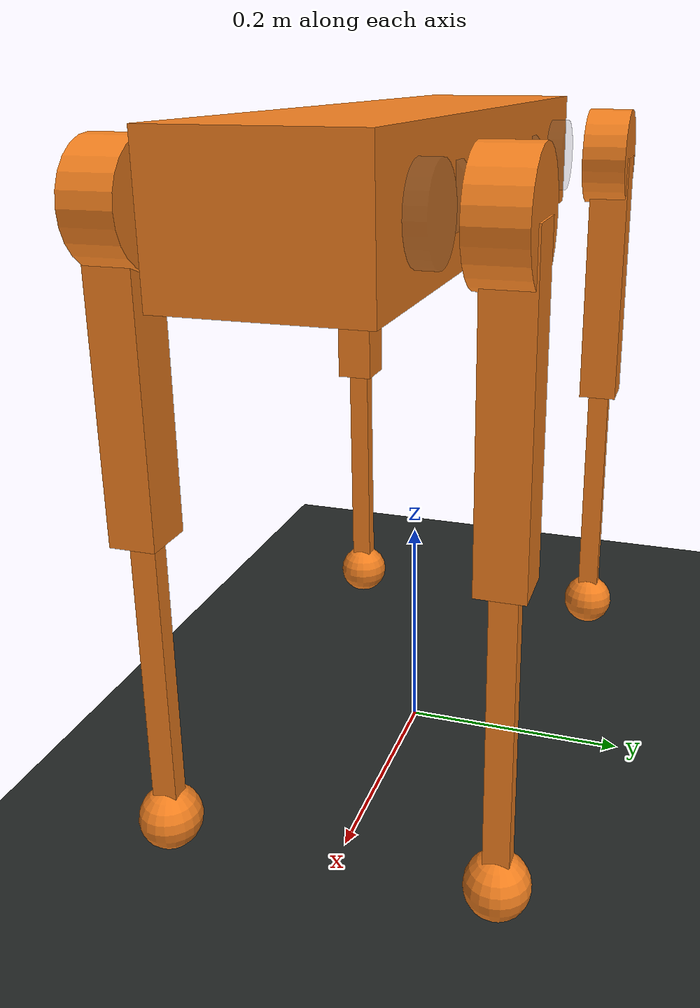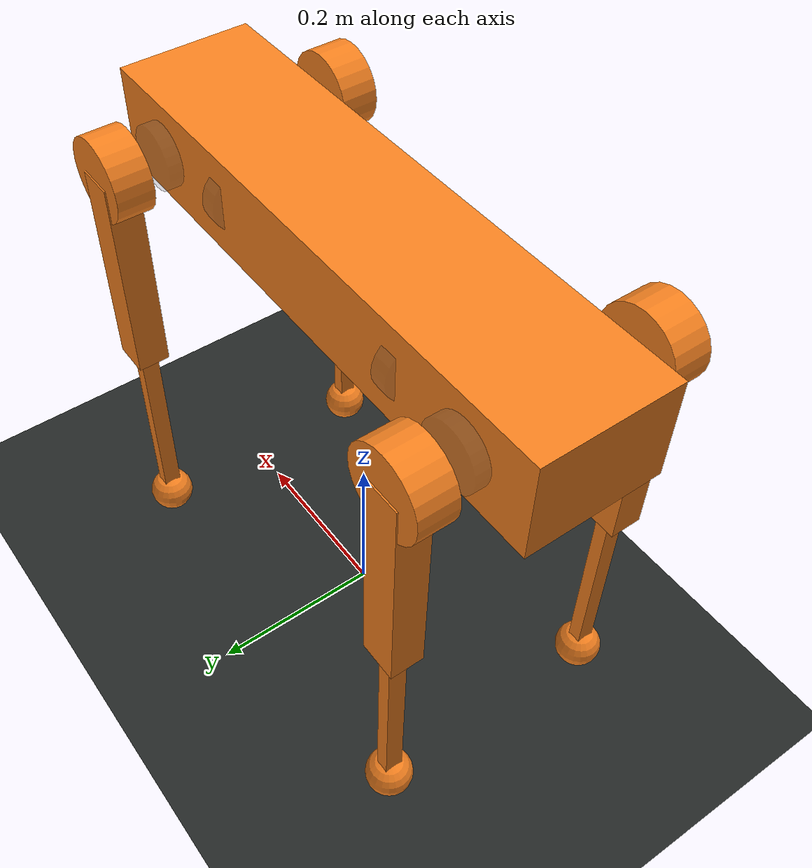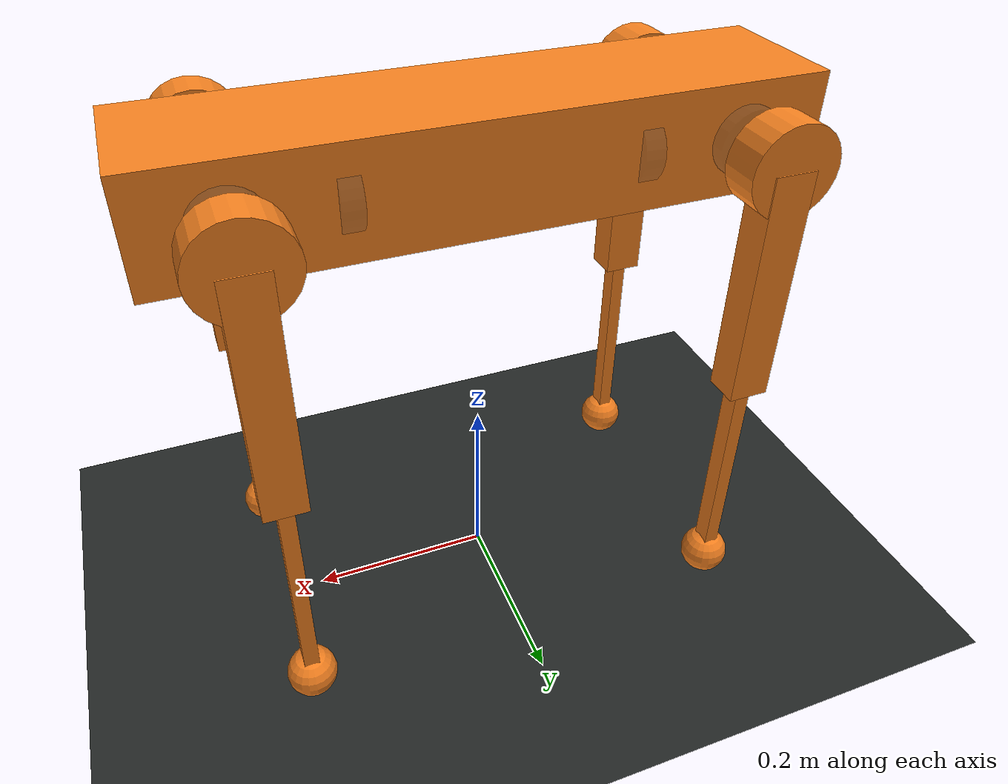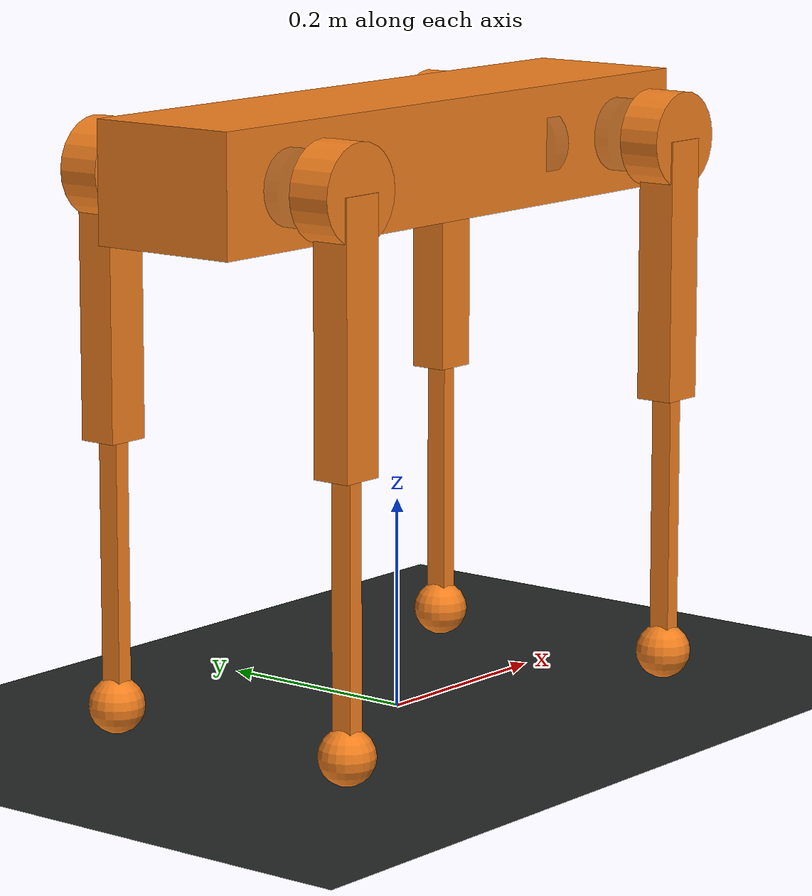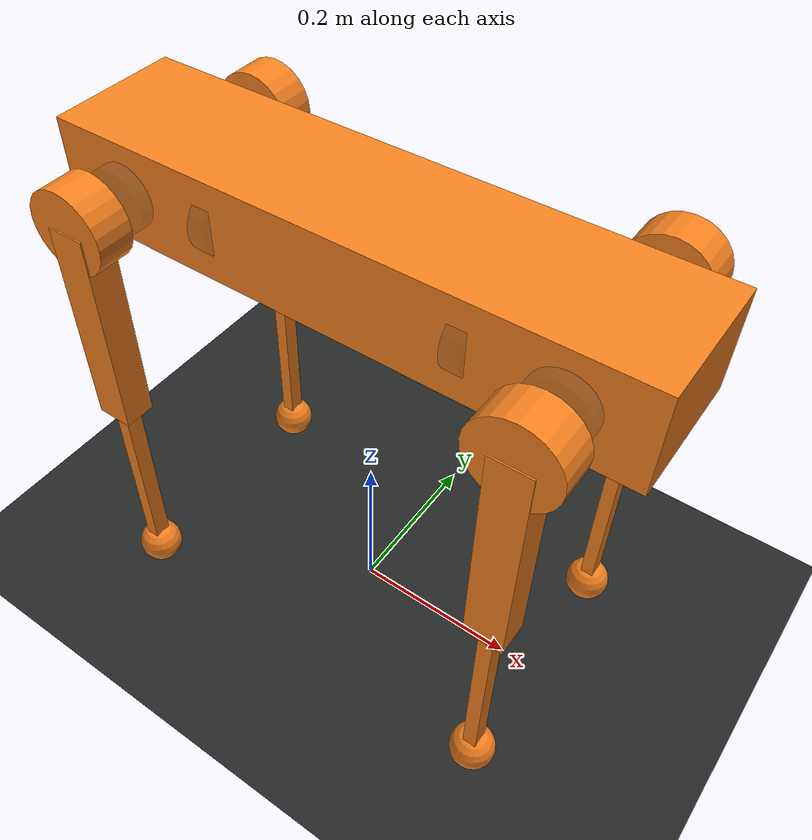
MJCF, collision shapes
<mujoco model="aliengo_scene">
  <compiler angle="radian" meshdir="." texturedir="." autolimits="true" />
  <option timestep="0.002" gravity="0 0 -9.81" integrator="implicitfast" cone="elliptic" iterations="80" tolerance="1e-10" />
  <statistic center="0 0 0.35" extent="2.6" />
  <visual>
    <headlight diffuse="0.55 0.55 0.55" ambient="0.14 0.14 0.14" specular="0.15 0.15 0.15" />
    <rgba haze="0.04 0.05 0.06 1" />
    <map znear="0.01" zfar="30" />
  </visual>
  <default>
    <geom margin="0.001" />
    <joint damping="2" armature="0.01" frictionloss="0.02" />
  </default>
  <asset>
    <texture name="skybox" type="skybox" builtin="gradient" rgb1="0.62 0.73 0.86" rgb2="0.06 0.08 0.11" width="512" height="512" />
    <texture name="ground_tex" type="2d" builtin="checker" rgb1="0.22 0.24 0.24" rgb2="0.28 0.30 0.30" width="512" height="512" />
    <material name="ground" texture="ground_tex" texrepeat="7 7" texuniform="true" rgba="0.55 0.56 0.54 1" roughness="0.92" specular="0.08" />
    <material name="aliengo_body" rgba="0.95 0.42 0.08 1" roughness="0.58" specular="0.22" />
    <material name="aliengo_leg" rgba="0.10 0.105 0.11 1" roughness="0.72" specular="0.16" />
    <material name="aliengo_collision" rgba="0.95 0.50 0.12 0.22" />
    <mesh name="aliengo_calf" file="aliengo_assets/calf.obj" smoothnormal="true" />
    <mesh name="aliengo_hip" file="aliengo_assets/hip.obj" smoothnormal="true" />
    <mesh name="aliengo_thigh" file="aliengo_assets/thigh.obj" smoothnormal="true" />
    <mesh name="aliengo_thigh_mirror" file="aliengo_assets/thigh_mirror.obj" smoothnormal="true" />
    <mesh name="aliengo_trunk" file="aliengo_assets/trunk.obj" smoothnormal="true" />
  </asset>
  <worldbody>
    <light name="key_light" directional="true" pos="-3 -4 6" dir="0.45 0.55 -1" diffuse="0.92 0.88 0.80" ambient="0.16 0.16 0.18" specular="0.22 0.22 0.22" />
    <geom name="floor" type="plane" size="5 5 0.05" material="ground" friction="0.9 0.02 0.01" />
    <camera name="front_view" pos="2.2 -3.0 1.35" xyaxes="0.81 0.59 0 -0.22 0.30 0.93" fovy="45" />
    <camera name="side_view" pos="0 -3.3 0.95" xyaxes="1 0 0 0 0.27 0.96" fovy="45" />
    <camera name="top_mount_view" pos="-1.5 -2.2 1.8" xyaxes="0.83 -0.56 0 0.36 0.54 0.76" fovy="40" />
    <body name="trunk" pos="0 0 0.528">
      <freejoint name="floating_base" />
      <inertial pos="0.008811 0.003839 0.000273" mass="11.644" fullinertia="0.051944892 0.24693924 0.270948307 0.001703617 0.000235941 0.000119783" />
      <geom name="trunk_visual" type="mesh" mesh="aliengo_trunk" material="aliengo_body" contype="0" conaffinity="0" group="2" rgba="0.95 0.42 0.08 1" />
      <geom size="0.3235 0.075 0.056" type="box" rgba="0.95 0.50 0.12 0.20" group="3" friction="0.85 0.02 0.01" condim="3" solref="0.02 1" solimp="0.9 0.95 0.001" name="trunk_collision" />
      <geom size="0.0005 0.0005 0.0005" type="box" rgba="0.35 0.35 0.35 0.10" group="4" friction="0.85 0.02 0.01" condim="3" solref="0.02 1" solimp="0.9 0.95 0.001" name="base_marker_collision_disabled" contype="0" conaffinity="0" />
      <geom size="0.035 0.01" pos="0.139985 -0.051 0" quat="0.707107 0 0.707107 0" type="cylinder" rgba="0.35 0.35 0.35 0.10" group="4" friction="0.85 0.02 0.01" condim="3" solref="0.02 1" solimp="0.9 0.95 0.001" name="trunk_rotor_collision_disabled" contype="0" conaffinity="0" />
      <geom size="0.035 0.01" pos="0.139985 0.051 0" quat="0.707107 0 0.707107 0" type="cylinder" rgba="0.35 0.35 0.35 0.10" group="4" friction="0.85 0.02 0.01" condim="3" solref="0.02 1" solimp="0.9 0.95 0.001" name="trunk_rotor_collision_disabled_2" contype="0" conaffinity="0" />
      <geom size="0.035 0.01" pos="-0.139985 -0.051 0" quat="0.707107 0 0.707107 0" type="cylinder" rgba="0.35 0.35 0.35 0.10" group="4" friction="0.85 0.02 0.01" condim="3" solref="0.02 1" solimp="0.9 0.95 0.001" name="trunk_rotor_collision_disabled_3" contype="0" conaffinity="0" />
      <geom size="0.035 0.01" pos="-0.139985 0.051 0" quat="0.707107 0 0.707107 0" type="cylinder" rgba="0.35 0.35 0.35 0.10" group="4" friction="0.85 0.02 0.01" condim="3" solref="0.02 1" solimp="0.9 0.95 0.001" name="trunk_rotor_collision_disabled_4" contype="0" conaffinity="0" />
      <body name="FR_hip" pos="0.2407 -0.051 0">
        <inertial pos="-0.0186423 -0.0141103 -1.39762e-05" quat="0.0813782 0.701816 -0.0890737 0.702067" mass="2.139" diaginertia="0.00463042 0.00455328 0.00244029" />
        <joint name="FR_hip_joint" pos="0 0 0" axis="1 0 0" range="-1.22173 1.22173" actuatorfrcrange="-35.278 35.278" damping="2" armature="0.01" frictionloss="0.02" ref="-0.1" />
        <geom name="FR_hip_visual" type="mesh" mesh="aliengo_hip" material="aliengo_leg" contype="0" conaffinity="0" group="2" quat="0 1 0 0" rgba="0.08 0.085 0.09 1" />
        <geom size="0.046 0.0209" pos="0 -0.083 0" quat="0.707107 0.707107 0 0" type="cylinder" rgba="0.95 0.50 0.12 0.20" group="3" friction="0.85 0.02 0.01" condim="3" solref="0.02 1" solimp="0.9 0.95 0.001" name="FR_hip_collision" />
        <geom size="0.035 0.01" pos="0 -0.0298 0" quat="0.707107 0.707107 0 0" type="cylinder" rgba="0.35 0.35 0.35 0.10" group="4" friction="0.85 0.02 0.01" condim="3" solref="0.02 1" solimp="0.9 0.95 0.001" name="FR_hip_rotor_collision_disabled" contype="0" conaffinity="0" />
        <body name="FR_thigh" pos="0 -0.0868 0">
          <inertial pos="-0.00464705 0.00321323 -0.0228778" quat="0.693645 0.0210128 0.0253423 0.719564" mass="0.771" diaginertia="0.00687384 0.00674067 0.000463497" />
          <joint name="FR_thigh_joint" pos="0 0 0" axis="0 1 0" actuatorfrcrange="-35.278 35.278" damping="2" armature="0.01" frictionloss="0.02" range="-2.6 2.6" ref="0.8" />
          <geom name="FR_thigh_visual" type="mesh" mesh="aliengo_thigh_mirror" material="aliengo_leg" contype="0" conaffinity="0" group="2" rgba="0.08 0.085 0.09 1" />
          <geom size="0.125 0.0187 0.0215" pos="0 0 -0.125" quat="0.707107 0 0.707107 0" type="box" rgba="0.95 0.50 0.12 0.20" group="3" friction="0.85 0.02 0.01" condim="3" solref="0.02 1" solimp="0.9 0.95 0.001" name="FR_thigh_collision" />
          <geom size="0.035 0.01" pos="0 0.0997 0" quat="0.707107 0.707107 0 0" type="cylinder" rgba="0.35 0.35 0.35 0.10" group="4" friction="0.85 0.02 0.01" condim="3" solref="0.02 1" solimp="0.9 0.95 0.001" name="FR_thigh_rotor_collision_disabled" contype="0" conaffinity="0" />
          <body name="FR_calf" pos="0 0 -0.25">
            <inertial pos="0.00215606 4.88427e-05 -0.166671" quat="0.708049 0.000982931 0.00120829 0.706161" mass="0.267" diaginertia="0.00269606 0.00268354 5.47714e-05" />
            <joint name="FR_calf_joint" pos="0 0 0" axis="0 1 0" range="-2.77507 -0.645772" actuatorfrcrange="-44.4 44.4" damping="2" armature="0.01" frictionloss="0.02" ref="-1.5" />
            <geom name="FR_calf_visual" type="mesh" mesh="aliengo_calf" material="aliengo_leg" contype="0" conaffinity="0" group="2" rgba="0.08 0.085 0.09 1" />
            <geom size="0.125 0.0104 0.008" pos="0 0 -0.125" quat="0.707107 0 0.707107 0" type="box" rgba="0.95 0.50 0.12 0.20" group="3" friction="0.85 0.02 0.01" condim="3" solref="0.02 1" solimp="0.9 0.95 0.001" name="FR_calf_collision" />
            <geom size="0.0265" pos="0 0 -0.25" rgba="0.95 0.50 0.12 0.20" group="3" friction="0.85 0.02 0.01" condim="3" solref="0.02 1" solimp="0.9 0.95 0.001" name="FR_calf_foot_collision" />
          </body>
        </body>
      </body>
      <body name="FL_hip" pos="0.2407 0.051 0">
        <inertial pos="-0.0227104 0.0141103 -1.39762e-05" quat="0.399077 0.416621 0.571857 0.583219" mass="2.139" diaginertia="0.00429032 0.00427056 0.00234344" />
        <joint name="FL_hip_joint" pos="0 0 0" axis="1 0 0" range="-1.22173 1.22173" actuatorfrcrange="-35.278 35.278" damping="2" armature="0.01" frictionloss="0.02" ref="0.1" />
        <geom name="FL_hip_visual" type="mesh" mesh="aliengo_hip" material="aliengo_leg" contype="0" conaffinity="0" group="2" rgba="0.08 0.085 0.09 1" />
        <geom size="0.046 0.0209" pos="0 0.083 0" quat="0.707107 0.707107 0 0" type="cylinder" rgba="0.95 0.50 0.12 0.20" group="3" friction="0.85 0.02 0.01" condim="3" solref="0.02 1" solimp="0.9 0.95 0.001" name="FL_hip_collision" />
        <geom size="0.035 0.01" pos="0 0.0298 0" quat="0.707107 0.707107 0 0" type="cylinder" rgba="0.35 0.35 0.35 0.10" group="4" friction="0.85 0.02 0.01" condim="3" solref="0.02 1" solimp="0.9 0.95 0.001" name="FL_hip_rotor_collision_disabled" contype="0" conaffinity="0" />
        <body name="FL_thigh" pos="0 0.0868 0">
          <inertial pos="-0.00464705 -0.00321323 -0.0570163" quat="0.704048 0.0353148 0.0135585 0.709144" mass="0.771" diaginertia="0.00477446 0.00463106 0.000466743" />
          <joint name="FL_thigh_joint" pos="0 0 0" axis="0 1 0" actuatorfrcrange="-35.278 35.278" damping="2" armature="0.01" frictionloss="0.02" range="-2.6 2.6" ref="0.8" />
          <geom name="FL_thigh_visual" type="mesh" mesh="aliengo_thigh" material="aliengo_leg" contype="0" conaffinity="0" group="2" rgba="0.08 0.085 0.09 1" />
          <geom size="0.125 0.0187 0.0215" pos="0 0 -0.125" quat="0.707107 0 0.707107 0" type="box" rgba="0.95 0.50 0.12 0.20" group="3" friction="0.85 0.02 0.01" condim="3" solref="0.02 1" solimp="0.9 0.95 0.001" name="FL_thigh_collision" />
          <geom size="0.035 0.01" pos="0 -0.0997 0" quat="0.707107 0.707107 0 0" type="cylinder" rgba="0.35 0.35 0.35 0.10" group="4" friction="0.85 0.02 0.01" condim="3" solref="0.02 1" solimp="0.9 0.95 0.001" name="FL_thigh_rotor_collision_disabled" contype="0" conaffinity="0" />
          <body name="FL_calf" pos="0 0 -0.25">
            <inertial pos="0.00215606 4.88427e-05 -0.166671" quat="0.708049 0.000982931 0.00120829 0.706161" mass="0.267" diaginertia="0.00269606 0.00268354 5.47714e-05" />
            <joint name="FL_calf_joint" pos="0 0 0" axis="0 1 0" range="-2.77507 -0.645772" actuatorfrcrange="-44.4 44.4" damping="2" armature="0.01" frictionloss="0.02" ref="-1.5" />
            <geom name="FL_calf_visual" type="mesh" mesh="aliengo_calf" material="aliengo_leg" contype="0" conaffinity="0" group="2" rgba="0.08 0.085 0.09 1" />
            <geom size="0.125 0.0104 0.008" pos="0 0 -0.125" quat="0.707107 0 0.707107 0" type="box" rgba="0.95 0.50 0.12 0.20" group="3" friction="0.85 0.02 0.01" condim="3" solref="0.02 1" solimp="0.9 0.95 0.001" name="FL_calf_collision" />
            <geom size="0.0265" pos="0 0 -0.25" rgba="0.95 0.50 0.12 0.20" group="3" friction="0.85 0.02 0.01" condim="3" solref="0.02 1" solimp="0.9 0.95 0.001" name="FL_calf_foot_collision" />
          </body>
        </body>
      </body>
      <body name="RR_hip" pos="-0.2407 -0.051 0">
        <inertial pos="0.0227104 -0.0141103 -1.39762e-05" quat="0.416621 0.399077 0.583219 0.571857" mass="2.139" diaginertia="0.00429032 0.00427056 0.00234344" />
        <joint name="RR_hip_joint" pos="0 0 0" axis="1 0 0" range="-1.22173 1.22173" actuatorfrcrange="-35.278 35.278" damping="2" armature="0.01" frictionloss="0.02" ref="-0.1" />
        <geom name="RR_hip_visual" type="mesh" mesh="aliengo_hip" material="aliengo_leg" contype="0" conaffinity="0" group="2" quat="0 0 0 -1" rgba="0.08 0.085 0.09 1" />
        <geom size="0.046 0.0209" pos="0 -0.083 0" quat="0.707107 0.707107 0 0" type="cylinder" rgba="0.95 0.50 0.12 0.20" group="3" friction="0.85 0.02 0.01" condim="3" solref="0.02 1" solimp="0.9 0.95 0.001" name="RR_hip_collision" />
        <geom size="0.035 0.01" pos="0 -0.0298 0" quat="0.707107 0.707107 0 0" type="cylinder" rgba="0.35 0.35 0.35 0.10" group="4" friction="0.85 0.02 0.01" condim="3" solref="0.02 1" solimp="0.9 0.95 0.001" name="RR_hip_rotor_collision_disabled" contype="0" conaffinity="0" />
        <body name="RR_thigh" pos="0 -0.0868 0">
          <inertial pos="-0.00464705 0.00321323 -0.0228778" quat="0.693645 0.0210128 0.0253423 0.719564" mass="0.771" diaginertia="0.00687384 0.00674067 0.000463497" />
          <joint name="RR_thigh_joint" pos="0 0 0" axis="0 1 0" actuatorfrcrange="-35.278 35.278" damping="2" armature="0.01" frictionloss="0.02" range="-2.6 2.6" ref="1" />
          <geom name="RR_thigh_visual" type="mesh" mesh="aliengo_thigh_mirror" material="aliengo_leg" contype="0" conaffinity="0" group="2" rgba="0.08 0.085 0.09 1" />
          <geom size="0.125 0.0187 0.0215" pos="0 0 -0.125" quat="0.707107 0 0.707107 0" type="box" rgba="0.95 0.50 0.12 0.20" group="3" friction="0.85 0.02 0.01" condim="3" solref="0.02 1" solimp="0.9 0.95 0.001" name="RR_thigh_collision" />
          <geom size="0.035 0.01" pos="0 0.0997 0" quat="0.707107 0.707107 0 0" type="cylinder" rgba="0.35 0.35 0.35 0.10" group="4" friction="0.85 0.02 0.01" condim="3" solref="0.02 1" solimp="0.9 0.95 0.001" name="RR_thigh_rotor_collision_disabled" contype="0" conaffinity="0" />
          <body name="RR_calf" pos="0 0 -0.25">
            <inertial pos="0.00215606 4.88427e-05 -0.166671" quat="0.708049 0.000982931 0.00120829 0.706161" mass="0.267" diaginertia="0.00269606 0.00268354 5.47714e-05" />
            <joint name="RR_calf_joint" pos="0 0 0" axis="0 1 0" range="-2.77507 -0.645772" actuatorfrcrange="-44.4 44.4" damping="2" armature="0.01" frictionloss="0.02" ref="-1.5" />
            <geom name="RR_calf_visual" type="mesh" mesh="aliengo_calf" material="aliengo_leg" contype="0" conaffinity="0" group="2" rgba="0.08 0.085 0.09 1" />
            <geom size="0.125 0.0104 0.008" pos="0 0 -0.125" quat="0.707107 0 0.707107 0" type="box" rgba="0.95 0.50 0.12 0.20" group="3" friction="0.85 0.02 0.01" condim="3" solref="0.02 1" solimp="0.9 0.95 0.001" name="RR_calf_collision" />
            <geom size="0.0265" pos="0 0 -0.25" rgba="0.95 0.50 0.12 0.20" group="3" friction="0.85 0.02 0.01" condim="3" solref="0.02 1" solimp="0.9 0.95 0.001" name="RR_calf_foot_collision" />
          </body>
        </body>
      </body>
      <body name="RL_hip" pos="-0.2407 0.051 0">
        <inertial pos="0.0186423 0.0141103 -1.39762e-05" quat="0.0890737 0.702067 -0.0813782 0.701816" mass="2.139" diaginertia="0.00463042 0.00455328 0.00244029" />
        <joint name="RL_hip_joint" pos="0 0 0" axis="1 0 0" range="-1.22173 1.22173" actuatorfrcrange="-35.278 35.278" damping="2" armature="0.01" frictionloss="0.02" ref="0.1" />
        <geom name="RL_hip_visual" type="mesh" mesh="aliengo_hip" material="aliengo_leg" contype="0" conaffinity="0" group="2" quat="0 0 1 0" rgba="0.08 0.085 0.09 1" />
        <geom size="0.046 0.0209" pos="0 0.083 0" quat="0.707107 0.707107 0 0" type="cylinder" rgba="0.95 0.50 0.12 0.20" group="3" friction="0.85 0.02 0.01" condim="3" solref="0.02 1" solimp="0.9 0.95 0.001" name="RL_hip_collision" />
        <geom size="0.035 0.01" pos="0 0.0298 0" quat="0.707107 0.707107 0 0" type="cylinder" rgba="0.35 0.35 0.35 0.10" group="4" friction="0.85 0.02 0.01" condim="3" solref="0.02 1" solimp="0.9 0.95 0.001" name="RL_hip_rotor_collision_disabled" contype="0" conaffinity="0" />
        <body name="RL_thigh" pos="0 0.0868 0">
          <inertial pos="-0.00464705 -0.00321323 -0.0570163" quat="0.704048 0.0353148 0.0135585 0.709144" mass="0.771" diaginertia="0.00477446 0.00463106 0.000466743" />
          <joint name="RL_thigh_joint" pos="0 0 0" axis="0 1 0" actuatorfrcrange="-35.278 35.278" damping="2" armature="0.01" frictionloss="0.02" range="-2.6 2.6" ref="1" />
          <geom name="RL_thigh_visual" type="mesh" mesh="aliengo_thigh" material="aliengo_leg" contype="0" conaffinity="0" group="2" rgba="0.08 0.085 0.09 1" />
          <geom size="0.125 0.0187 0.0215" pos="0 0 -0.125" quat="0.707107 0 0.707107 0" type="box" rgba="0.95 0.50 0.12 0.20" group="3" friction="0.85 0.02 0.01" condim="3" solref="0.02 1" solimp="0.9 0.95 0.001" name="RL_thigh_collision" />
          <geom size="0.035 0.01" pos="0 -0.0997 0" quat="0.707107 0.707107 0 0" type="cylinder" rgba="0.35 0.35 0.35 0.10" group="4" friction="0.85 0.02 0.01" condim="3" solref="0.02 1" solimp="0.9 0.95 0.001" name="RL_thigh_rotor_collision_disabled" contype="0" conaffinity="0" />
          <body name="RL_calf" pos="0 0 -0.25">
            <inertial pos="0.00215606 4.88427e-05 -0.166671" quat="0.708049 0.000982931 0.00120829 0.706161" mass="0.267" diaginertia="0.00269606 0.00268354 5.47714e-05" />
            <joint name="RL_calf_joint" pos="0 0 0" axis="0 1 0" range="-2.77507 -0.645772" actuatorfrcrange="-44.4 44.4" damping="2" armature="0.01" frictionloss="0.02" ref="-1.5" />
            <geom name="RL_calf_visual" type="mesh" mesh="aliengo_calf" material="aliengo_leg" contype="0" conaffinity="0" group="2" rgba="0.08 0.085 0.09 1" />
            <geom size="0.125 0.0104 0.008" pos="0 0 -0.125" quat="0.707107 0 0.707107 0" type="box" rgba="0.95 0.50 0.12 0.20" group="3" friction="0.85 0.02 0.01" condim="3" solref="0.02 1" solimp="0.9 0.95 0.001" name="RL_calf_collision" />
            <geom size="0.0265" pos="0 0 -0.25" rgba="0.95 0.50 0.12 0.20" group="3" friction="0.85 0.02 0.01" condim="3" solref="0.02 1" solimp="0.9 0.95 0.001" name="RL_calf_foot_collision" />
          </body>
        </body>
      </body>
    </body>
  </worldbody>
 <actuator>
    <position name="FR_hip" joint="FR_hip_joint" kp="80" kv="4" ctrlrange="-1.22173 1.22173" forcerange="-35.278 35.278" />
    <position name="FR_thigh" joint="FR_thigh_joint" kp="80" kv="4" ctrlrange="-2.6 2.6" forcerange="-35.278 35.278" />
    <position name="FR_calf" joint="FR_calf_joint" kp="100" kv="5" ctrlrange="-2.77507 -0.645772" forcerange="-44.4 44.4" />
    <position name="FL_hip" joint="FL_hip_joint" kp="80" kv="4" ctrlrange="-1.22173 1.22173" forcerange="-35.278 35.278" />
    <position name="FL_thigh" joint="FL_thigh_joint" kp="80" kv="4" ctrlrange="-2.6 2.6" forcerange="-35.278 35.278" />
    <position name="FL_calf" joint="FL_calf_joint" kp="100" kv="5" ctrlrange="-2.77507 -0.645772" forcerange="-44.4 44.4" />
    <position name="RR_hip" joint="RR_hip_joint" kp="80" kv="4" ctrlrange="-1.22173 1.22173" forcerange="-35.278 35.278" />
    <position name="RR_thigh" joint="RR_thigh_joint" kp="80" kv="4" ctrlrange="-2.6 2.6" forcerange="-35.278 35.278" />
    <position name="RR_calf" joint="RR_calf_joint" kp="100" kv="5" ctrlrange="-2.77507 -0.645772" forcerange="-44.4 44.4" />
    <position name="RL_hip" joint="RL_hip_joint" kp="80" kv="4" ctrlrange="-1.22173 1.22173" forcerange="-35.278 35.278" />
    <position name="RL_thigh" joint="RL_thigh_joint" kp="80" kv="4" ctrlrange="-2.6 2.6" forcerange="-35.278 35.278" />
    <position name="RL_calf" joint="RL_calf_joint" kp="100" kv="5" ctrlrange="-2.77507 -0.645772" forcerange="-44.4 44.4" />
  </actuator>
  <keyframe>
    <key name="stand" qpos="0 0 0.46 1 0 0 0 -0.1 0.8 -1.5 0.1 0.8 -1.5 -0.1 1 -1.5 0.1 1 -1.5" ctrl="-0.1 0.8 -1.5 0.1 0.8 -1.5 -0.1 1 -1.5 0.1 1 -1.5" />
  </keyframe>
</mujoco>
